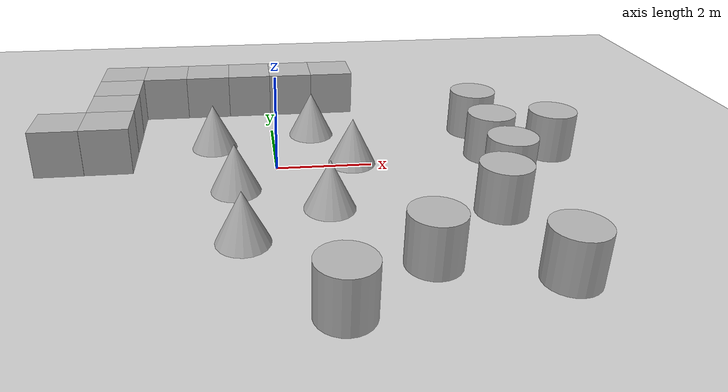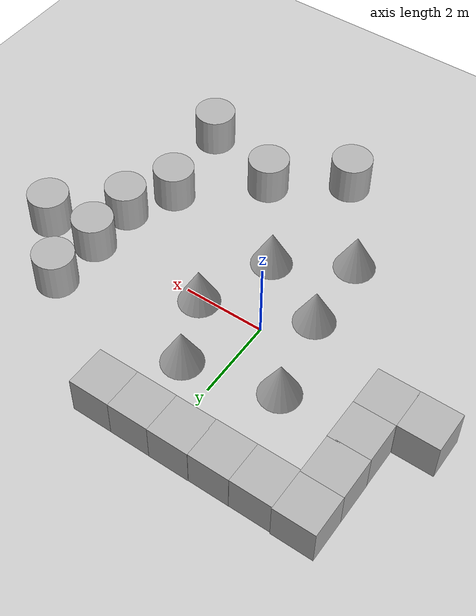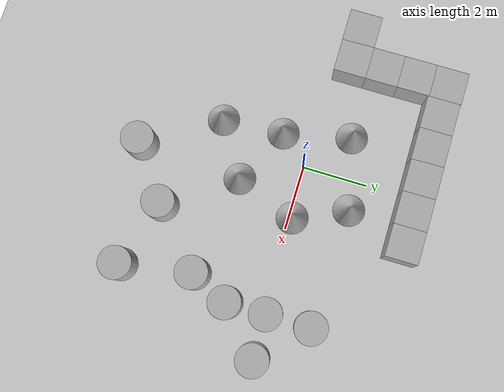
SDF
<sdf version='1.10'>
  <world name='empty'>
    <physics name='1ms' type='ignored'>
      <max_step_size>0.001</max_step_size>
      <real_time_factor>1</real_time_factor>
      <real_time_update_rate>1000</real_time_update_rate>
    </physics>
    <plugin name='gz::sim::systems::Physics' filename='gz-sim-physics-system'/>
    <plugin name='gz::sim::systems::UserCommands' filename='gz-sim-user-commands-system'/>
    <plugin name='gz::sim::systems::SceneBroadcaster' filename='gz-sim-scene-broadcaster-system'/>
    <plugin name='gz::sim::systems::Sensors' filename='gz-sim-sensors-system'>
      <render_engine>ogre2</render_engine>
    </plugin>
    <plugin name='gz::sim::systems::Contact' filename='gz-sim-contact-system'/>
    <gravity>0 0 -9.8000000000000007</gravity>
    <magnetic_field>5.5644999999999998e-06 2.2875799999999999e-05 -4.2388400000000002e-05</magnetic_field>
    <atmosphere type='adiabatic'/>
    <scene>
      <ambient>0.400000006 0.400000006 0.400000006 1</ambient>
      <background>0.699999988 0.699999988 0.699999988 1</background>
      <shadows>true</shadows>
    </scene>
    <model name='ground_plane'>
      <static>true</static>
      <link name='link'>
        <collision name='collision'>
          <geometry>
            <plane>
              <normal>0 0 1</normal>
              <size>100 100</size>
            </plane>
          </geometry>
          <surface>
            <friction>
              <ode/>
            </friction>
            <bounce/>
            <contact/>
          </surface>
        </collision>
        <visual name='visual'>
          <geometry>
            <plane>
              <normal>0 0 1</normal>
              <size>100 100</size>
            </plane>
          </geometry>
          <material>
            <ambient>0.800000012 0.800000012 0.800000012 1</ambient>
            <diffuse>0.800000012 0.800000012 0.800000012 1</diffuse>
            <specular>0.800000012 0.800000012 0.800000012 1</specular>
          </material>
        </visual>
        <pose>0 0 0 0 0 0</pose>
        <inertial>
          <pose>0 0 0 0 0 0</pose>
          <mass>1</mass>
          <inertia>
            <ixx>1</ixx>
            <ixy>0</ixy>
            <ixz>0</ixz>
            <iyy>1</iyy>
            <iyz>0</iyz>
            <izz>1</izz>
          </inertia>
        </inertial>
        <enable_wind>false</enable_wind>
      </link>
      <pose>0 0 0 0 0 0</pose>
      <self_collide>false</self_collide>
    </model>
    <model name='cone'>
      <pose>0.89209720458272834 1.7054396825122418 0.49999999992120586 2.2548609771849084e-12 -8.412361000366448e-10 1.6327917132682593e-17</pose>
      <link name='cone_link'>
        <inertial>
          <inertia>
            <ixx>0.074999999999999997</ixx>
            <ixy>0</ixy>
            <ixz>0</ixz>
            <iyy>0.074999999999999997</iyy>
            <iyz>0</iyz>
            <izz>0.074999999999999997</izz>
          </inertia>
          <mass>1</mass>
          <pose>0 0 0 0 0 0</pose>
        </inertial>
        <collision name='cone_collision'>
          <geometry>
            <cone>
              <radius>0.5</radius>
              <length>1</length>
            </cone>
          </geometry>
          <surface>
            <friction>
              <ode/>
            </friction>
            <bounce/>
            <contact/>
          </surface>
        </collision>
        <visual name='cone_visual'>
          <geometry>
            <cone>
              <radius>0.5</radius>
              <length>1</length>
            </cone>
          </geometry>
          <material>
            <ambient>0.300000012 0.300000012 0.300000012 1</ambient>
            <diffuse>0.699999988 0.699999988 0.699999988 1</diffuse>
            <specular>1 1 1 1</specular>
          </material>
        </visual>
        <pose>0 0 0 0 0 0</pose>
        <enable_wind>false</enable_wind>
      </link>
      <static>false</static>
      <self_collide>false</self_collide>
    </model>
    <model name='cone_0'>
      <pose>1.6017504955373649 0.11137166643998586 0.49999999992120586 2.2548609693944932e-12 -8.4123610002441597e-10 1.6328215862285748e-17</pose>
      <link name='cone_link'>
        <inertial>
          <inertia>
            <ixx>0.074999999999999997</ixx>
            <ixy>0</ixy>
            <ixz>0</ixz>
            <iyy>0.074999999999999997</iyy>
            <iyz>0</iyz>
            <izz>0.074999999999999997</izz>
          </inertia>
          <mass>1</mass>
          <pose>0 0 0 0 0 0</pose>
        </inertial>
        <collision name='cone_collision'>
          <geometry>
            <cone>
              <radius>0.5</radius>
              <length>1</length>
            </cone>
          </geometry>
          <surface>
            <friction>
              <ode/>
            </friction>
            <bounce/>
            <contact/>
          </surface>
        </collision>
        <visual name='cone_visual'>
          <geometry>
            <cone>
              <radius>0.5</radius>
              <length>1</length>
            </cone>
          </geometry>
          <material>
            <ambient>0.300000012 0.300000012 0.300000012 1</ambient>
            <diffuse>0.699999988 0.699999988 0.699999988 1</diffuse>
            <specular>1 1 1 1</specular>
          </material>
        </visual>
        <pose>0 0 0 0 0 0</pose>
        <enable_wind>false</enable_wind>
      </link>
      <static>false</static>
      <self_collide>false</self_collide>
    </model>
    <model name='cone_1'>
      <pose>0.89209722885717035 -1.7729107687327892 0.49999999992120586 2.254860980600426e-12 -8.412361000269762e-10 1.6327534652422516e-17</pose>
      <link name='cone_link'>
        <inertial>
          <inertia>
            <ixx>0.074999999999999997</ixx>
            <ixy>0</ixy>
            <ixz>0</ixz>
            <iyy>0.074999999999999997</iyy>
            <iyz>0</iyz>
            <izz>0.074999999999999997</izz>
          </inertia>
          <mass>1</mass>
          <pose>0 0 0 0 0 0</pose>
        </inertial>
        <collision name='cone_collision'>
          <geometry>
            <cone>
              <radius>0.5</radius>
              <length>1</length>
            </cone>
          </geometry>
          <surface>
            <friction>
              <ode/>
            </friction>
            <bounce/>
            <contact/>
          </surface>
        </collision>
        <visual name='cone_visual'>
          <geometry>
            <cone>
              <radius>0.5</radius>
              <length>1</length>
            </cone>
          </geometry>
          <material>
            <ambient>0.300000012 0.300000012 0.300000012 1</ambient>
            <diffuse>0.699999988 0.699999988 0.699999988 1</diffuse>
            <specular>1 1 1 1</specular>
          </material>
        </visual>
        <pose>0 0 0 0 0 0</pose>
        <enable_wind>false</enable_wind>
      </link>
      <static>false</static>
      <self_collide>false</self_collide>
    </model>
    <model name='cone_2'>
      <pose>-0.85483674836364087 -0.89062610222487659 0.49999999992120586 2.2548609634575739e-12 -8.4123610003497979e-10 1.632782658098386e-17</pose>
      <link name='cone_link'>
        <inertial>
          <inertia>
            <ixx>0.074999999999999997</ixx>
            <ixy>0</ixy>
            <ixz>0</ixz>
            <iyy>0.074999999999999997</iyy>
            <iyz>0</iyz>
            <izz>0.074999999999999997</izz>
          </inertia>
          <mass>1</mass>
          <pose>0 0 0 0 0 0</pose>
        </inertial>
        <collision name='cone_collision'>
          <geometry>
            <cone>
              <radius>0.5</radius>
              <length>1</length>
            </cone>
          </geometry>
          <surface>
            <friction>
              <ode/>
            </friction>
            <bounce/>
            <contact/>
          </surface>
        </collision>
        <visual name='cone_visual'>
          <geometry>
            <cone>
              <radius>0.5</radius>
              <length>1</length>
            </cone>
          </geometry>
          <material>
            <ambient>0.300000012 0.300000012 0.300000012 1</ambient>
            <diffuse>0.699999988 0.699999988 0.699999988 1</diffuse>
            <specular>1 1 1 1</specular>
          </material>
        </visual>
        <pose>0 0 0 0 0 0</pose>
        <enable_wind>false</enable_wind>
      </link>
      <static>false</static>
      <self_collide>false</self_collide>
    </model>
    <model name='box'>
      <pose>1.5214029752743361 3.5075571721027514 0.4999999902012548 -3.1976623991065651e-12 1.9595680720071489e-08 1.3183315182900012e-07</pose>
      <link name='box_link'>
        <inertial>
          <inertia>
            <ixx>0.16666</ixx>
            <ixy>0</ixy>
            <ixz>0</ixz>
            <iyy>0.16666</iyy>
            <iyz>0</iyz>
            <izz>0.16666</izz>
          </inertia>
          <mass>1</mass>
          <pose>0 0 0 0 0 0</pose>
        </inertial>
        <collision name='box_collision'>
          <geometry>
            <box>
              <size>1 1 1</size>
            </box>
          </geometry>
          <surface>
            <friction>
              <ode/>
            </friction>
            <bounce/>
            <contact/>
          </surface>
        </collision>
        <visual name='box_visual'>
          <geometry>
            <box>
              <size>1 1 1</size>
            </box>
          </geometry>
          <material>
            <ambient>0.300000012 0.300000012 0.300000012 1</ambient>
            <diffuse>0.699999988 0.699999988 0.699999988 1</diffuse>
            <specular>1 1 1 1</specular>
          </material>
        </visual>
        <pose>0 0 0 0 0 0</pose>
        <enable_wind>false</enable_wind>
      </link>
      <static>false</static>
      <self_collide>false</self_collide>
    </model>
    <model name='box_0'>
      <pose>0.52140399398307258 3.5086059458695837 0.49999999019478925 -7.6314104430658988e-12 1.9581899761033666e-08 1.3449350664881381e-07</pose>
      <link name='box_link'>
        <inertial>
          <inertia>
            <ixx>0.16666</ixx>
            <ixy>0</ixy>
            <ixz>0</ixz>
            <iyy>0.16666</iyy>
            <iyz>0</iyz>
            <izz>0.16666</izz>
          </inertia>
          <mass>1</mass>
          <pose>0 0 0 0 0 0</pose>
        </inertial>
        <collision name='box_collision'>
          <geometry>
            <box>
              <size>1 1 1</size>
            </box>
          </geometry>
          <surface>
            <friction>
              <ode/>
            </friction>
            <bounce/>
            <contact/>
          </surface>
        </collision>
        <visual name='box_visual'>
          <geometry>
            <box>
              <size>1 1 1</size>
            </box>
          </geometry>
          <material>
            <ambient>0.300000012 0.300000012 0.300000012 1</ambient>
            <diffuse>0.699999988 0.699999988 0.699999988 1</diffuse>
            <specular>1 1 1 1</specular>
          </material>
        </visual>
        <pose>0 0 0 0 0 0</pose>
        <enable_wind>false</enable_wind>
      </link>
      <static>false</static>
      <self_collide>false</self_collide>
    </model>
    <model name='box_1'>
      <pose>-0.4785939687387098 3.5111301764094174 0.49999999020299646 -2.7124139885418936e-11 1.960593244569203e-08 1.4007569334343442e-07</pose>
      <link name='box_link'>
        <inertial>
          <inertia>
            <ixx>0.16666</ixx>
            <ixy>0</ixy>
            <ixz>0</ixz>
            <iyy>0.16666</iyy>
            <iyz>0</iyz>
            <izz>0.16666</izz>
          </inertia>
          <mass>1</mass>
          <pose>0 0 0 0 0 0</pose>
        </inertial>
        <collision name='box_collision'>
          <geometry>
            <box>
              <size>1 1 1</size>
            </box>
          </geometry>
          <surface>
            <friction>
              <ode/>
            </friction>
            <bounce/>
            <contact/>
          </surface>
        </collision>
        <visual name='box_visual'>
          <geometry>
            <box>
              <size>1 1 1</size>
            </box>
          </geometry>
          <material>
            <ambient>0.300000012 0.300000012 0.300000012 1</ambient>
            <diffuse>0.699999988 0.699999988 0.699999988 1</diffuse>
            <specular>1 1 1 1</specular>
          </material>
        </visual>
        <pose>0 0 0 0 0 0</pose>
        <enable_wind>false</enable_wind>
      </link>
      <static>false</static>
      <self_collide>false</self_collide>
    </model>
    <model name='box_2'>
      <pose>-1.4658692907167912 3.5048000379877524 0.49999999019271651 -7.0690127058856905e-12 -1.9478029481923472e-08 1.1410731730325616e-06</pose>
      <link name='box_link'>
        <inertial>
          <inertia>
            <ixx>0.16666</ixx>
            <ixy>0</ixy>
            <ixz>0</ixz>
            <iyy>0.16666</iyy>
            <iyz>0</iyz>
            <izz>0.16666</izz>
          </inertia>
          <mass>1</mass>
          <pose>0 0 0 0 0 0</pose>
        </inertial>
        <collision name='box_collision'>
          <geometry>
            <box>
              <size>1 1 1</size>
            </box>
          </geometry>
          <surface>
            <friction>
              <ode/>
            </friction>
            <bounce/>
            <contact/>
          </surface>
        </collision>
        <visual name='box_visual'>
          <geometry>
            <box>
              <size>1 1 1</size>
            </box>
          </geometry>
          <material>
            <ambient>0.300000012 0.300000012 0.300000012 1</ambient>
            <diffuse>0.699999988 0.699999988 0.699999988 1</diffuse>
            <specular>1 1 1 1</specular>
          </material>
        </visual>
        <pose>0 0 0 0 0 0</pose>
        <enable_wind>false</enable_wind>
      </link>
      <static>false</static>
      <self_collide>false</self_collide>
    </model>
    <model name='box_3'>
      <pose>-2.4658692463890342 3.5023121255574652 0.4999999901779702 -8.7051882417669883e-11 -1.9336655553732035e-08 1.1621829959522303e-06</pose>
      <link name='box_link'>
        <inertial>
          <inertia>
            <ixx>0.16666</ixx>
            <ixy>0</ixy>
            <ixz>0</ixz>
            <iyy>0.16666</iyy>
            <iyz>0</iyz>
            <izz>0.16666</izz>
          </inertia>
          <mass>1</mass>
          <pose>0 0 0 0 0 0</pose>
        </inertial>
        <collision name='box_collision'>
          <geometry>
            <box>
              <size>1 1 1</size>
            </box>
          </geometry>
          <surface>
            <friction>
              <ode/>
            </friction>
            <bounce/>
            <contact/>
          </surface>
        </collision>
        <visual name='box_visual'>
          <geometry>
            <box>
              <size>1 1 1</size>
            </box>
          </geometry>
          <material>
            <ambient>0.300000012 0.300000012 0.300000012 1</ambient>
            <diffuse>0.699999988 0.699999988 0.699999988 1</diffuse>
            <specular>1 1 1 1</specular>
          </material>
        </visual>
        <pose>0 0 0 0 0 0</pose>
        <enable_wind>false</enable_wind>
      </link>
      <static>false</static>
      <self_collide>false</self_collide>
    </model>
    <model name='box_4'>
      <pose>-3.4658701804552297 3.5242074327398121 0.49999999434595255 -2.7882804842366844e-08 -1.6587883804795337e-08 2.605118469975318e-06</pose>
      <link name='box_link'>
        <inertial>
          <inertia>
            <ixx>0.16666</ixx>
            <ixy>0</ixy>
            <ixz>0</ixz>
            <iyy>0.16666</iyy>
            <iyz>0</iyz>
            <izz>0.16666</izz>
          </inertia>
          <mass>1</mass>
          <pose>0 0 0 0 0 0</pose>
        </inertial>
        <collision name='box_collision'>
          <geometry>
            <box>
              <size>1 1 1</size>
            </box>
          </geometry>
          <surface>
            <friction>
              <ode/>
            </friction>
            <bounce/>
            <contact/>
          </surface>
        </collision>
        <visual name='box_visual'>
          <geometry>
            <box>
              <size>1 1 1</size>
            </box>
          </geometry>
          <material>
            <ambient>0.300000012 0.300000012 0.300000012 1</ambient>
            <diffuse>0.699999988 0.699999988 0.699999988 1</diffuse>
            <specular>1 1 1 1</specular>
          </material>
        </visual>
        <pose>0 0 0 0 0 0</pose>
        <enable_wind>false</enable_wind>
      </link>
      <static>false</static>
      <self_collide>false</self_collide>
    </model>
    <model name='box_5'>
      <pose>-3.4658631804482773 2.5372452391320377 0.49999999584501065 -3.0881629445254591e-08 -2.2588525445121633e-08 1.2170087930018192e-05</pose>
      <link name='box_link'>
        <inertial>
          <inertia>
            <ixx>0.16666</ixx>
            <ixy>0</ixy>
            <ixz>0</ixz>
            <iyy>0.16666</iyy>
            <iyz>0</iyz>
            <izz>0.16666</izz>
          </inertia>
          <mass>1</mass>
          <pose>0 0 0 0 0 0</pose>
        </inertial>
        <collision name='box_collision'>
          <geometry>
            <box>
              <size>1 1 1</size>
            </box>
          </geometry>
          <surface>
            <friction>
              <ode/>
            </friction>
            <bounce/>
            <contact/>
          </surface>
        </collision>
        <visual name='box_visual'>
          <geometry>
            <box>
              <size>1 1 1</size>
            </box>
          </geometry>
          <material>
            <ambient>0.300000012 0.300000012 0.300000012 1</ambient>
            <diffuse>0.699999988 0.699999988 0.699999988 1</diffuse>
            <specular>1 1 1 1</specular>
          </material>
        </visual>
        <pose>0 0 0 0 0 0</pose>
        <enable_wind>false</enable_wind>
      </link>
      <static>false</static>
      <self_collide>false</self_collide>
    </model>
    <model name='box_6'>
      <pose>-3.4606450300039153 1.5594484802766224 0.49999999002474377 4.9643040095295584e-10 6.8136504293083295e-11 -1.0898445537007974e-06</pose>
      <link name='box_link'>
        <inertial>
          <inertia>
            <ixx>0.16666</ixx>
            <ixy>0</ixy>
            <ixz>0</ixz>
            <iyy>0.16666</iyy>
            <iyz>0</iyz>
            <izz>0.16666</izz>
          </inertia>
          <mass>1</mass>
          <pose>0 0 0 0 0 0</pose>
        </inertial>
        <collision name='box_collision'>
          <geometry>
            <box>
              <size>1 1 1</size>
            </box>
          </geometry>
          <surface>
            <friction>
              <ode/>
            </friction>
            <bounce/>
            <contact/>
          </surface>
        </collision>
        <visual name='box_visual'>
          <geometry>
            <box>
              <size>1 1 1</size>
            </box>
          </geometry>
          <material>
            <ambient>0.300000012 0.300000012 0.300000012 1</ambient>
            <diffuse>0.699999988 0.699999988 0.699999988 1</diffuse>
            <specular>1 1 1 1</specular>
          </material>
        </visual>
        <pose>0 0 0 0 0 0</pose>
        <enable_wind>false</enable_wind>
      </link>
      <static>false</static>
      <self_collide>false</self_collide>
    </model>
    <model name='box_7'>
      <pose>-3.4607717782979153 0.56596550428081638 0.49999999998378936 3.9162142976035049e-08 3.9150716186362448e-08 -0.00017197368306086093</pose>
      <link name='box_link'>
        <inertial>
          <inertia>
            <ixx>0.16666</ixx>
            <ixy>0</ixy>
            <ixz>0</ixz>
            <iyy>0.16666</iyy>
            <iyz>0</iyz>
            <izz>0.16666</izz>
          </inertia>
          <mass>1</mass>
          <pose>0 0 0 0 0 0</pose>
        </inertial>
        <collision name='box_collision'>
          <geometry>
            <box>
              <size>1 1 1</size>
            </box>
          </geometry>
          <surface>
            <friction>
              <ode/>
            </friction>
            <bounce/>
            <contact/>
          </surface>
        </collision>
        <visual name='box_visual'>
          <geometry>
            <box>
              <size>1 1 1</size>
            </box>
          </geometry>
          <material>
            <ambient>0.300000012 0.300000012 0.300000012 1</ambient>
            <diffuse>0.699999988 0.699999988 0.699999988 1</diffuse>
            <specular>1 1 1 1</specular>
          </material>
        </visual>
        <pose>0 0 0 0 0 0</pose>
        <enable_wind>false</enable_wind>
      </link>
      <static>false</static>
      <self_collide>false</self_collide>
    </model>
    <model name='box_8'>
      <pose>-4.4507113495245756 0.56097571620849307 0.49999999999027062 3.9179411924827218e-08 -3.9165365523811396e-08 -0.00020554630966161173</pose>
      <link name='box_link'>
        <inertial>
          <inertia>
            <ixx>0.16666</ixx>
            <ixy>0</ixy>
            <ixz>0</ixz>
            <iyy>0.16666</iyy>
            <iyz>0</iyz>
            <izz>0.16666</izz>
          </inertia>
          <mass>1</mass>
          <pose>0 0 0 0 0 0</pose>
        </inertial>
        <collision name='box_collision'>
          <geometry>
            <box>
              <size>1 1 1</size>
            </box>
          </geometry>
          <surface>
            <friction>
              <ode/>
            </friction>
            <bounce/>
            <contact/>
          </surface>
        </collision>
        <visual name='box_visual'>
          <geometry>
            <box>
              <size>1 1 1</size>
            </box>
          </geometry>
          <material>
            <ambient>0.300000012 0.300000012 0.300000012 1</ambient>
            <diffuse>0.699999988 0.699999988 0.699999988 1</diffuse>
            <specular>1 1 1 1</specular>
          </material>
        </visual>
        <pose>0 0 0 0 0 0</pose>
        <enable_wind>false</enable_wind>
      </link>
      <static>false</static>
      <self_collide>false</self_collide>
    </model>
    <model name='cone_3'>
      <pose>-0.74522266721032571 -2.7935540041708391 0.49999999993296756 5.2544931075677214e-17 -7.7132841038480847e-10 -7.6328321314384305e-23</pose>
      <link name='cone_link'>
        <inertial>
          <inertia>
            <ixx>0.074999999999999997</ixx>
            <ixy>0</ixy>
            <ixz>0</ixz>
            <iyy>0.074999999999999997</iyy>
            <iyz>0</iyz>
            <izz>0.074999999999999997</izz>
          </inertia>
          <mass>1</mass>
          <pose>0 0 0 0 0 0</pose>
        </inertial>
        <collision name='cone_collision'>
          <geometry>
            <cone>
              <radius>0.5</radius>
              <length>1</length>
            </cone>
          </geometry>
          <surface>
            <friction>
              <ode/>
            </friction>
            <bounce/>
            <contact/>
          </surface>
        </collision>
        <visual name='cone_visual'>
          <geometry>
            <cone>
              <radius>0.5</radius>
              <length>1</length>
            </cone>
          </geometry>
          <material>
            <ambient>0.300000012 0.300000012 0.300000012 1</ambient>
            <diffuse>0.699999988 0.699999988 0.699999988 1</diffuse>
            <specular>1 1 1 1</specular>
          </material>
        </visual>
        <pose>0 0 0 0 0 0</pose>
        <enable_wind>false</enable_wind>
      </link>
      <static>false</static>
      <self_collide>false</self_collide>
    </model>
    <model name='cylinder'>
      <pose>4.6000593621503523 1.5460010756589035 0.49999942638036005 -1.7433562258067745e-19 2.7929844970949395e-19 1.006632307090954e-20</pose>
      <link name='cylinder_link'>
        <inertial>
          <inertia>
            <ixx>0.14580000000000001</ixx>
            <ixy>0</ixy>
            <ixz>0</ixz>
            <iyy>0.14580000000000001</iyy>
            <iyz>0</iyz>
            <izz>0.125</izz>
          </inertia>
          <mass>1</mass>
          <pose>0 0 0 0 0 0</pose>
        </inertial>
        <collision name='cylinder_collision'>
          <geometry>
            <cylinder>
              <radius>0.5</radius>
              <length>1</length>
            </cylinder>
          </geometry>
          <surface>
            <friction>
              <ode/>
            </friction>
            <bounce/>
            <contact/>
          </surface>
        </collision>
        <visual name='cylinder_visual'>
          <geometry>
            <cylinder>
              <radius>0.5</radius>
              <length>1</length>
            </cylinder>
          </geometry>
          <material>
            <ambient>0.300000012 0.300000012 0.300000012 1</ambient>
            <diffuse>0.699999988 0.699999988 0.699999988 1</diffuse>
            <specular>1 1 1 1</specular>
          </material>
        </visual>
        <pose>0 0 0 0 0 0</pose>
        <enable_wind>false</enable_wind>
      </link>
      <static>false</static>
      <self_collide>false</self_collide>
    </model>
    <model name='cylinder_1'>
      <pose>4.5847423565336411 0.18716394050614027 0.49999902969250259 4.9104075646332218e-20 -1.9935609657601841e-20 1.8400571416009985e-20</pose>
      <link name='cylinder_link'>
        <inertial>
          <inertia>
            <ixx>0.14580000000000001</ixx>
            <ixy>0</ixy>
            <ixz>0</ixz>
            <iyy>0.14580000000000001</iyy>
            <iyz>0</iyz>
            <izz>0.125</izz>
          </inertia>
          <mass>1</mass>
        </inertial>
        <collision name='cylinder_collision'>
          <geometry>
            <cylinder>
              <radius>0.5</radius>
              <length>1</length>
            </cylinder>
          </geometry>
          <surface>
            <friction>
              <ode/>
            </friction>
            <bounce/>
            <contact/>
          </surface>
        </collision>
        <visual name='cylinder_visual'>
          <geometry>
            <cylinder>
              <radius>0.5</radius>
              <length>1</length>
            </cylinder>
          </geometry>
          <material>
            <ambient>0.300000012 0.300000012 0.300000012 1</ambient>
            <diffuse>0.699999988 0.699999988 0.699999988 1</diffuse>
            <specular>1 1 1 1</specular>
          </material>
        </visual>
      </link>
      <static>false</static>
      <self_collide>false</self_collide>
    </model>
    <model name='cylinder_2'>
      <pose>4.5981217068869267 -1.0449770654408321 0.49999899681693183 -1.7546423080139631e-19 2.7997052483846365e-19 9.8715036894558199e-21</pose>
      <link name='cylinder_link'>
        <inertial>
          <inertia>
            <ixx>0.14580000000000001</ixx>
            <ixy>0</ixy>
            <ixz>0</ixz>
            <iyy>0.14580000000000001</iyy>
            <iyz>0</iyz>
            <izz>0.125</izz>
          </inertia>
          <mass>1</mass>
        </inertial>
        <collision name='cylinder_collision'>
          <geometry>
            <cylinder>
              <radius>0.5</radius>
              <length>1</length>
            </cylinder>
          </geometry>
          <surface>
            <friction>
              <ode/>
            </friction>
            <bounce/>
            <contact/>
          </surface>
        </collision>
        <visual name='cylinder_visual'>
          <geometry>
            <cylinder>
              <radius>0.5</radius>
              <length>1</length>
            </cylinder>
          </geometry>
          <material>
            <ambient>0.300000012 0.300000012 0.300000012 1</ambient>
            <diffuse>0.699999988 0.699999988 0.699999988 1</diffuse>
            <specular>1 1 1 1</specular>
          </material>
        </visual>
      </link>
      <static>false</static>
      <self_collide>false</self_collide>
    </model>
    <model name='cylinder_3'>
      <pose>5.932642757003773 0.19085519381831284 0.49999899681693183 -1.7393814087826933e-19 2.7381763099326307e-19 1.0619640617943055e-20</pose>
      <link name='cylinder_link'>
        <inertial>
          <inertia>
            <ixx>0.14580000000000001</ixx>
            <ixy>0</ixy>
            <ixz>0</ixz>
            <iyy>0.14580000000000001</iyy>
            <iyz>0</iyz>
            <izz>0.125</izz>
          </inertia>
          <mass>1</mass>
        </inertial>
        <collision name='cylinder_collision'>
          <geometry>
            <cylinder>
              <radius>0.5</radius>
              <length>1</length>
            </cylinder>
          </geometry>
          <surface>
            <friction>
              <ode/>
            </friction>
            <bounce/>
            <contact/>
          </surface>
        </collision>
        <visual name='cylinder_visual'>
          <geometry>
            <cylinder>
              <radius>0.5</radius>
              <length>1</length>
            </cylinder>
          </geometry>
          <material>
            <ambient>0.300000012 0.300000012 0.300000012 1</ambient>
            <diffuse>0.699999988 0.699999988 0.699999988 1</diffuse>
            <specular>1 1 1 1</specular>
          </material>
        </visual>
      </link>
      <static>false</static>
      <self_collide>false</self_collide>
    </model>
    <model name='cylinder_4'>
      <pose>4.0507160571147107 -2.211516617402709 0.49999899681693183 -1.7688611529772775e-19 2.7823727156536593e-19 1.0276514555813889e-20</pose>
      <link name='cylinder_link'>
        <inertial>
          <inertia>
            <ixx>0.14580000000000001</ixx>
            <ixy>0</ixy>
            <ixz>0</ixz>
            <iyy>0.14580000000000001</iyy>
            <iyz>0</iyz>
            <izz>0.125</izz>
          </inertia>
          <mass>1</mass>
        </inertial>
        <collision name='cylinder_collision'>
          <geometry>
            <cylinder>
              <radius>0.5</radius>
              <length>1</length>
            </cylinder>
          </geometry>
          <surface>
            <friction>
              <ode/>
            </friction>
            <bounce/>
            <contact/>
          </surface>
        </collision>
        <visual name='cylinder_visual'>
          <geometry>
            <cylinder>
              <radius>0.5</radius>
              <length>1</length>
            </cylinder>
          </geometry>
          <material>
            <ambient>0.300000012 0.300000012 0.300000012 1</ambient>
            <diffuse>0.699999988 0.699999988 0.699999988 1</diffuse>
            <specular>1 1 1 1</specular>
          </material>
        </visual>
      </link>
      <static>false</static>
      <self_collide>false</self_collide>
    </model>
    <model name='cylinder_5'>
      <pose>2.3491610943425689 -3.776753137950621 0.49999899681693183 -1.7653089757734568e-19 2.803799388490442e-19 1.0694765563741062e-20</pose>
      <link name='cylinder_link'>
        <inertial>
          <inertia>
            <ixx>0.14580000000000001</ixx>
            <ixy>0</ixy>
            <ixz>0</ixz>
            <iyy>0.14580000000000001</iyy>
            <iyz>0</iyz>
            <izz>0.125</izz>
          </inertia>
          <mass>1</mass>
        </inertial>
        <collision name='cylinder_collision'>
          <geometry>
            <cylinder>
              <radius>0.5</radius>
              <length>1</length>
            </cylinder>
          </geometry>
          <surface>
            <friction>
              <ode/>
            </friction>
            <bounce/>
            <contact/>
          </surface>
        </collision>
        <visual name='cylinder_visual'>
          <geometry>
            <cylinder>
              <radius>0.5</radius>
              <length>1</length>
            </cylinder>
          </geometry>
          <material>
            <ambient>0.300000012 0.300000012 0.300000012 1</ambient>
            <diffuse>0.699999988 0.699999988 0.699999988 1</diffuse>
            <specular>1 1 1 1</specular>
          </material>
        </visual>
      </link>
      <static>false</static>
      <self_collide>false</self_collide>
    </model>
    <model name='cylinder_6'>
      <pose>4.4064345518438293 -4.4175209815544978 0.49999899681693183 -1.7482424170597531e-19 2.827102122771347e-19 1.0565343420256818e-20</pose>
      <link name='cylinder_link'>
        <inertial>
          <inertia>
            <ixx>0.14580000000000001</ixx>
            <ixy>0</ixy>
            <ixz>0</ixz>
            <iyy>0.14580000000000001</iyy>
            <iyz>0</iyz>
            <izz>0.125</izz>
          </inertia>
          <mass>1</mass>
        </inertial>
        <collision name='cylinder_collision'>
          <geometry>
            <cylinder>
              <radius>0.5</radius>
              <length>1</length>
            </cylinder>
          </geometry>
          <surface>
            <friction>
              <ode/>
            </friction>
            <bounce/>
            <contact/>
          </surface>
        </collision>
        <visual name='cylinder_visual'>
          <geometry>
            <cylinder>
              <radius>0.5</radius>
              <length>1</length>
            </cylinder>
          </geometry>
          <material>
            <ambient>0.300000012 0.300000012 0.300000012 1</ambient>
            <diffuse>0.699999988 0.699999988 0.699999988 1</diffuse>
            <specular>1 1 1 1</specular>
          </material>
        </visual>
      </link>
      <static>false</static>
      <self_collide>false</self_collide>
    </model>
    <model name='cylinder_7'>
      <pose>0.70970638037461253 -4.9534414077700841 0.49999899681693183 -1.7786207365016411e-19 2.7487878610671117e-19 1.0022569915773232e-20</pose>
      <link name='cylinder_link'>
        <inertial>
          <inertia>
            <ixx>0.14580000000000001</ixx>
            <ixy>0</ixy>
            <ixz>0</ixz>
            <iyy>0.14580000000000001</iyy>
            <iyz>0</iyz>
            <izz>0.125</izz>
          </inertia>
          <mass>1</mass>
        </inertial>
        <collision name='cylinder_collision'>
          <geometry>
            <cylinder>
              <radius>0.5</radius>
              <length>1</length>
            </cylinder>
          </geometry>
          <surface>
            <friction>
              <ode/>
            </friction>
            <bounce/>
            <contact/>
          </surface>
        </collision>
        <visual name='cylinder_visual'>
          <geometry>
            <cylinder>
              <radius>0.5</radius>
              <length>1</length>
            </cylinder>
          </geometry>
          <material>
            <ambient>0.300000012 0.300000012 0.300000012 1</ambient>
            <diffuse>0.699999988 0.699999988 0.699999988 1</diffuse>
            <specular>1 1 1 1</specular>
          </material>
        </visual>
      </link>
      <static>false</static>
      <self_collide>false</self_collide>
    </model>
    <model name='cone_4'>
      <pose>-1.3086071323470538 1.1857761513551535 0.49999999993296756 5.2544931075677214e-17 -7.7132841038480847e-10 -7.6328321314384305e-23</pose>
      <link name='cone_link'>
        <inertial>
          <inertia>
            <ixx>0.074999999999999997</ixx>
            <ixy>0</ixy>
            <ixz>0</ixz>
            <iyy>0.074999999999999997</iyy>
            <iyz>0</iyz>
            <izz>0.074999999999999997</izz>
          </inertia>
          <mass>1</mass>
          <pose>0 0 0 0 0 0</pose>
        </inertial>
        <collision name='cone_collision'>
          <geometry>
            <cone>
              <radius>0.5</radius>
              <length>1</length>
            </cone>
          </geometry>
          <surface>
            <friction>
              <ode/>
            </friction>
            <bounce/>
            <contact/>
          </surface>
        </collision>
        <visual name='cone_visual'>
          <geometry>
            <cone>
              <radius>0.5</radius>
              <length>1</length>
            </cone>
          </geometry>
          <material>
            <ambient>0.300000012 0.300000012 0.300000012 1</ambient>
            <diffuse>0.699999988 0.699999988 0.699999988 1</diffuse>
            <specular>1 1 1 1</specular>
          </material>
        </visual>
        <pose>0 0 0 0 0 0</pose>
        <enable_wind>false</enable_wind>
      </link>
      <static>false</static>
      <self_collide>false</self_collide>
    </model>
    <light name='sun' type='directional'>
      <pose>0 0 10 0 0 0</pose>
      <cast_shadows>true</cast_shadows>
      <intensity>1</intensity>
      <direction>-0.5 0.10000000000000001 -0.90000000000000002</direction>
      <diffuse>0.800000012 0.800000012 0.800000012 1</diffuse>
      <specular>0.200000003 0.200000003 0.200000003 1</specular>
      <attenuation>
        <range>1000</range>
        <linear>0.01</linear>
        <constant>0.90000000000000002</constant>
        <quadratic>0.001</quadratic>
      </attenuation>
      <spot>
        <inner_angle>0</inner_angle>
        <outer_angle>0</outer_angle>
        <falloff>0</falloff>
      </spot>
    </light>
  </world>
</sdf>
